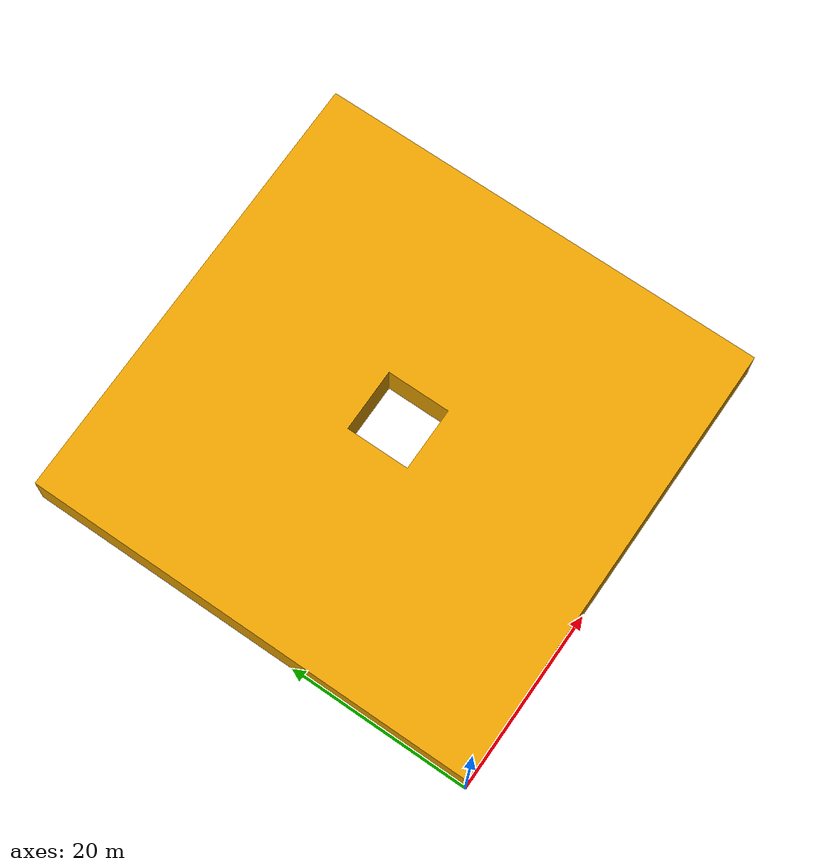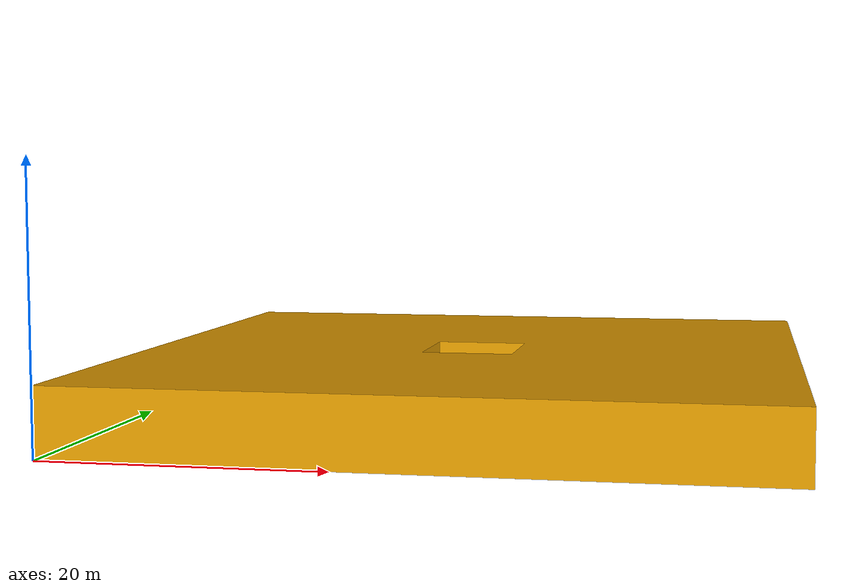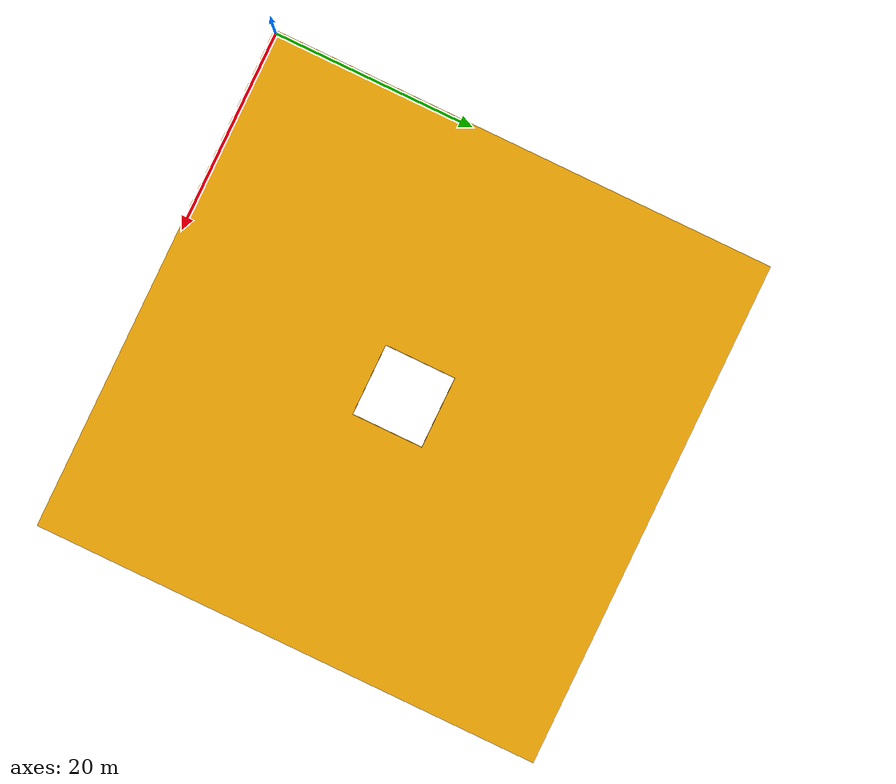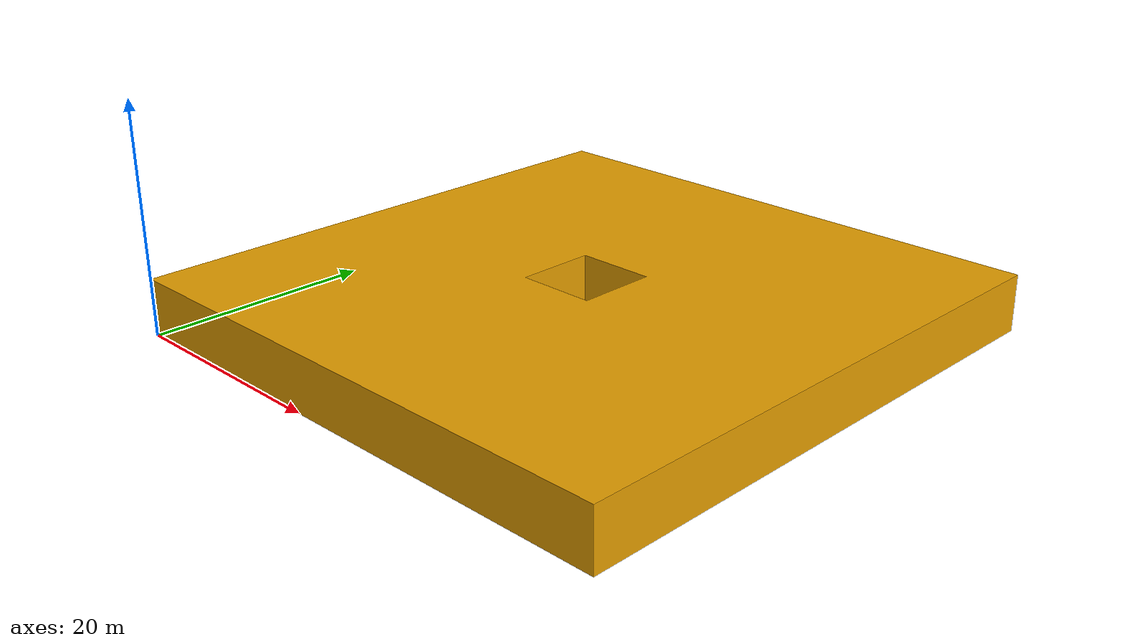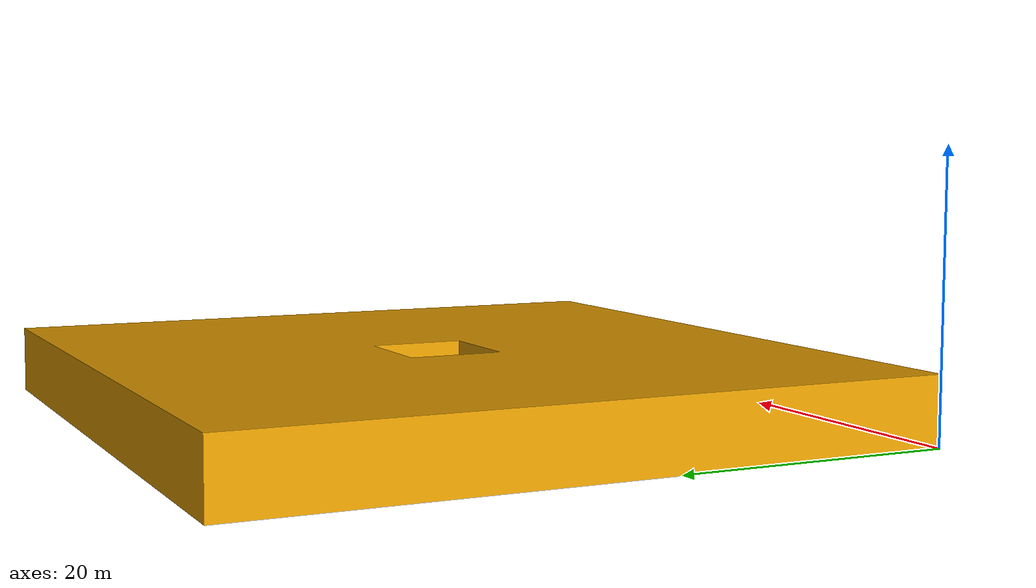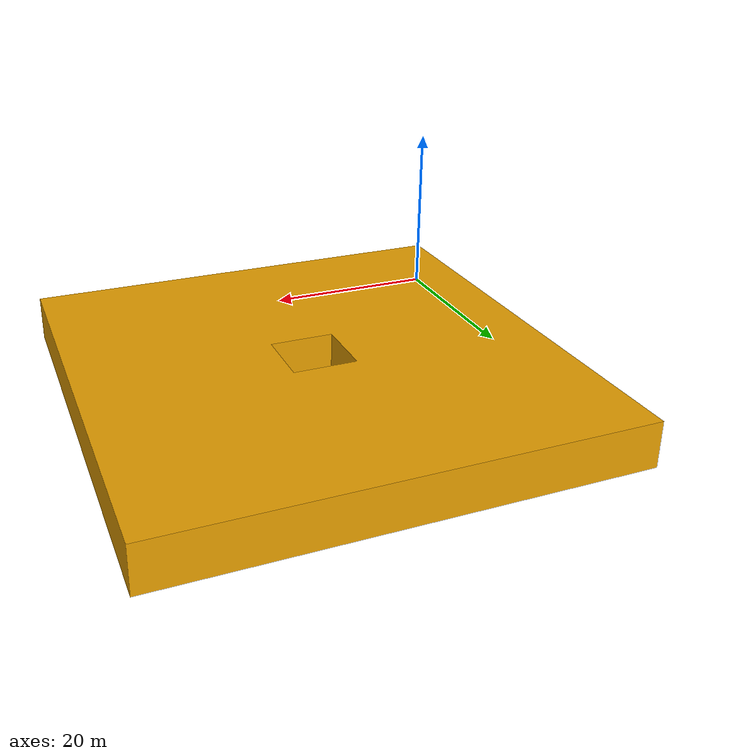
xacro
<?xml version="1.0" encoding="UTF-8"?>

<robot name="wall" xmlns:xacro="http://www.ros.org/wiki/xacro">

    <link name="base">

        <inertial>
            <origin xyz="0 0 0" rpy="0 0 0"/>
            <mass value="1"/>
            <inertia ixx="1" ixy="1" ixz="1" iyy="1" iyz="1" izz="1"/>
        </inertial>

        <collision>
            <origin xyz="0 0 0" rpy="0 0 0"/>
            <geometry>

                <mesh filename="package://my_robot_description/meshes/wall.STL"/>
            </geometry>
        </collision>

        <visual>
            <origin xyz="0 0 0" rpy="0 0 0"/>
            <geometry>

                <mesh filename="package://my_robot_description/meshes/wall.STL"/>
            </geometry>
        </visual>
    </link>

</robot>
